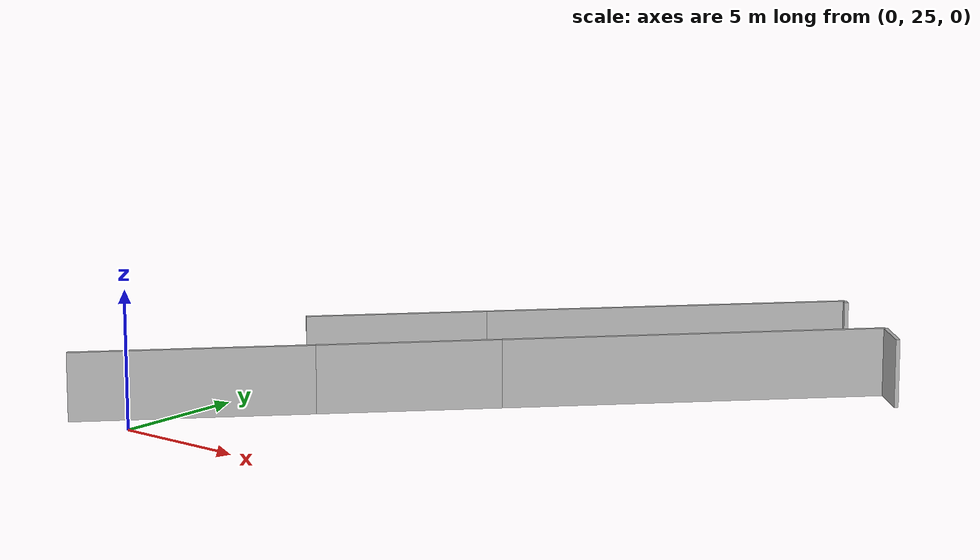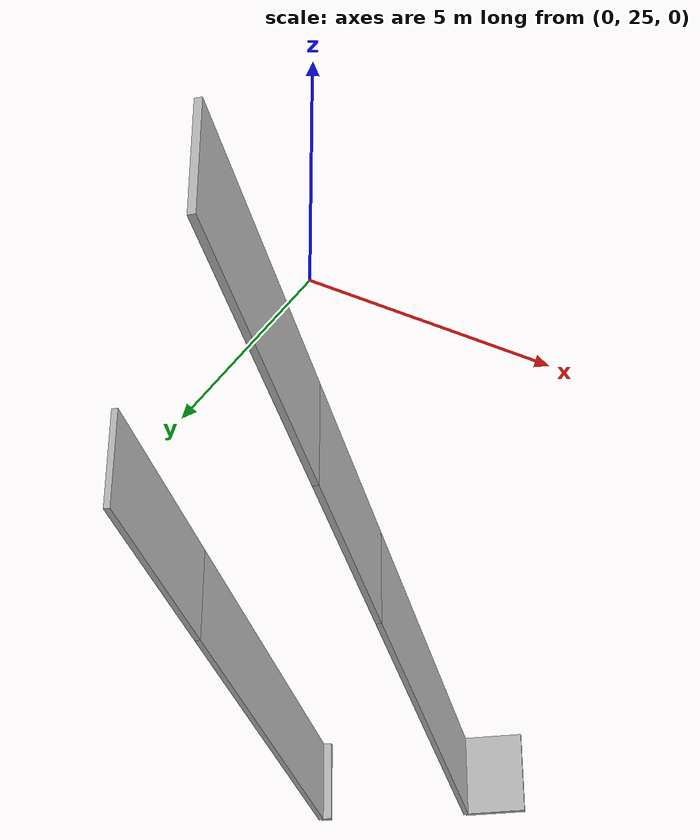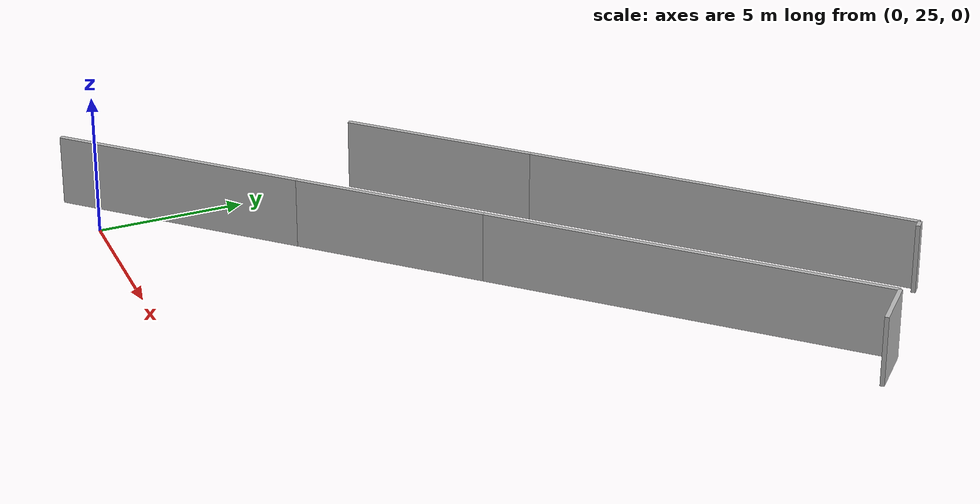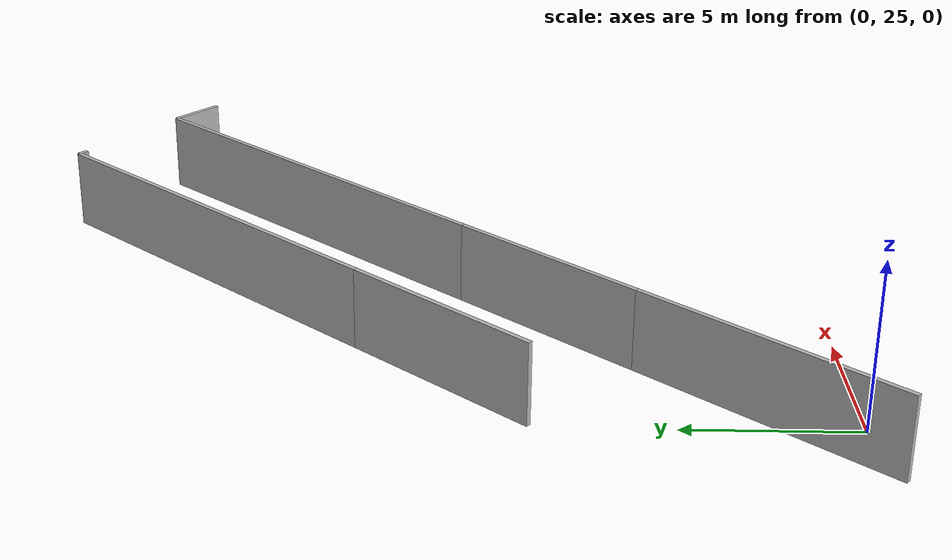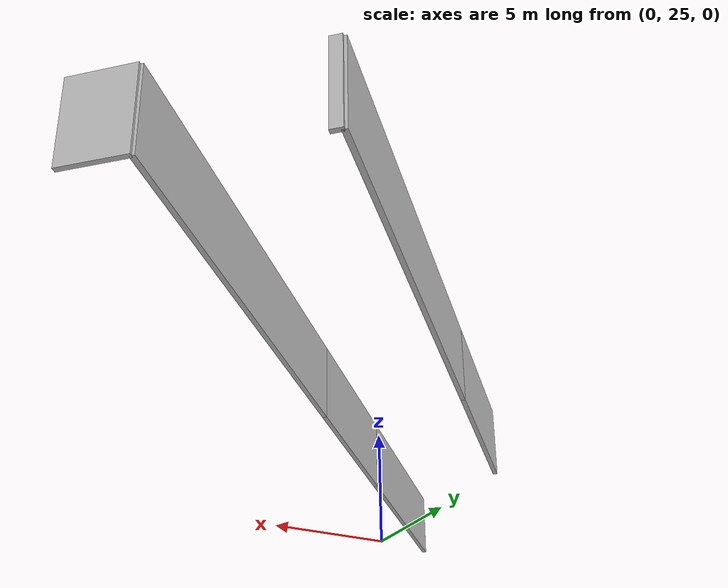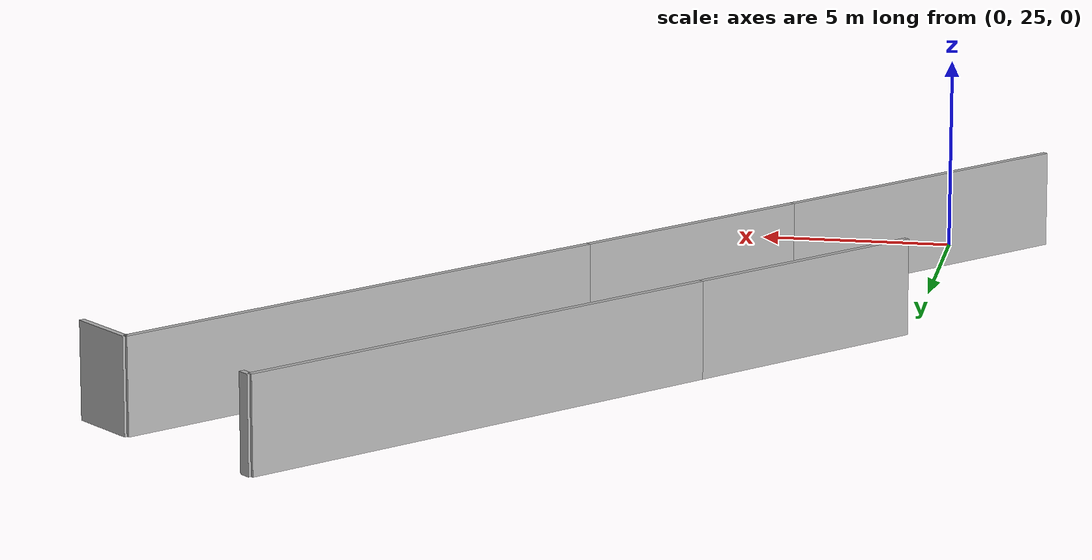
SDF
<?xml version="1.0" ?>
<sdf version="1.6">
  <model name="sps_1648">
    <pose frame="">0 0 0 0 -0 0</pose>
    <static>1</static>
    <self_collide>0</self_collide>
    <allow_auto_disable>0</allow_auto_disable>
    <link name="Wall50">
      <kinematic>0</kinematic>
      <gravity>1</gravity>
      <self_collide>0</self_collide>
      <collision name="collision">
        <geometry>
          <box>
            <size>1.8194 0.15 2.5</size>
          </box>
        </geometry>
        <pose frame="">0 0 0 0 -0 0</pose>
      </collision>
      <visual name="visual">
        <geometry>
          <box>
            <size>1.8194 0.15 2.5</size>
          </box>
        </geometry>
        <pose frame="">0 0 0 0 -0 0</pose>
        <cast_shadows>1</cast_shadows>
        <transparency>0.0</transparency>
      </visual>
      <pose frame="">18.029 45.432 1.25 0 0 -0.728033</pose>
    </link>
    <link name="Wall233">
      <kinematic>0</kinematic>
      <gravity>1</gravity>
      <self_collide>0</self_collide>
      <collision name="collision">
        <geometry>
          <box>
            <size>0.320134 0.15 2.5</size>
          </box>
        </geometry>
        <pose frame="">0 0 0 0 -0 0</pose>
      </collision>
      <visual name="visual">
        <geometry>
          <box>
            <size>0.320134 0.15 2.5</size>
          </box>
        </geometry>
        <pose frame="">0 0 0 0 -0 0</pose>
        <cast_shadows>1</cast_shadows>
        <transparency>0.0</transparency>
      </visual>
      <pose frame="">13.8431 48.6249 1.25 0 0 -0.726991</pose>
    </link>
    <link name="Wall372">
      <kinematic>0</kinematic>
      <gravity>1</gravity>
      <self_collide>0</self_collide>
      <collision name="collision">
        <geometry>
          <box>
            <size>8.74209 0.15 2.5</size>
          </box>
        </geometry>
        <pose frame="">0 0 0 0 -0 0</pose>
      </collision>
      <visual name="visual">
        <geometry>
          <box>
            <size>8.74209 0.15 2.5</size>
          </box>
        </geometry>
        <pose frame="">0 0 0 0 -0 0</pose>
        <cast_shadows>1</cast_shadows>
        <transparency>0.0</transparency>
      </visual>
      <pose frame="">0.487754 27.6845 1.25 0 -0 0.827715</pose>
    </link>
    <link name="Wall373">
      <kinematic>0</kinematic>
      <gravity>1</gravity>
      <self_collide>0</self_collide>
      <collision name="collision">
        <geometry>
          <box>
            <size>6.63984 0.15 2.5</size>
          </box>
        </geometry>
        <pose frame="">0 0 0 0 -0 0</pose>
      </collision>
      <visual name="visual">
        <geometry>
          <box>
            <size>6.63984 0.15 2.5</size>
          </box>
        </geometry>
        <pose frame="">0 0 0 0 -0 0</pose>
        <cast_shadows>1</cast_shadows>
        <transparency>0.0</transparency>
      </visual>
      <pose frame="">2.37756 36.3923 1.25 0 -0 0.827641</pose>
    </link>
    <link name="Wall554">
      <kinematic>0</kinematic>
      <gravity>1</gravity>
      <self_collide>0</self_collide>
      <collision name="collision">
        <geometry>
          <box>
            <size>6.63948 0.15 2.5</size>
          </box>
        </geometry>
        <pose frame="">0 0 0 0 -0 0</pose>
      </collision>
      <visual name="visual">
        <geometry>
          <box>
            <size>6.63948 0.15 2.5</size>
          </box>
        </geometry>
        <pose frame="">0 0 0 0 -0 0</pose>
        <cast_shadows>1</cast_shadows>
        <transparency>0.0</transparency>
      </visual>
      <pose frame="">5.69094 33.348 1.25 0 -0 0.827754</pose>
    </link>
    <link name="Wall626">
      <kinematic>0</kinematic>
      <gravity>1</gravity>
      <self_collide>0</self_collide>
      <collision name="collision">
        <geometry>
          <box>
            <size>13.4426 0.15 2.5</size>
          </box>
        </geometry>
        <pose frame="">0 0 0 0 -0 0</pose>
      </collision>
      <visual name="visual">
        <geometry>
          <box>
            <size>13.4426 0.15 2.5</size>
          </box>
        </geometry>
        <pose frame="">0 0 0 0 -0 0</pose>
        <cast_shadows>1</cast_shadows>
        <transparency>0.0</transparency>
      </visual>
      <pose frame="">9.17367 43.7841 1.25 0 -0 0.827219</pose>
    </link>
    <link name="Wall627">
      <kinematic>0</kinematic>
      <gravity>1</gravity>
      <self_collide>0</self_collide>
      <collision name="collision">
        <geometry>
          <box>
            <size>13.9125 0.15 2.5</size>
          </box>
        </geometry>
        <pose frame="">0 0 0 0 -0 0</pose>
      </collision>
      <visual name="visual">
        <geometry>
          <box>
            <size>13.9125 0.15 2.5</size>
          </box>
        </geometry>
        <pose frame="">0 0 0 0 -0 0</pose>
        <cast_shadows>1</cast_shadows>
        <transparency>0.0</transparency>
      </visual>
      <pose frame="">12.6434 40.915 1.25 0 -0 0.827677</pose>
    </link>
  </model>
</sdf>
